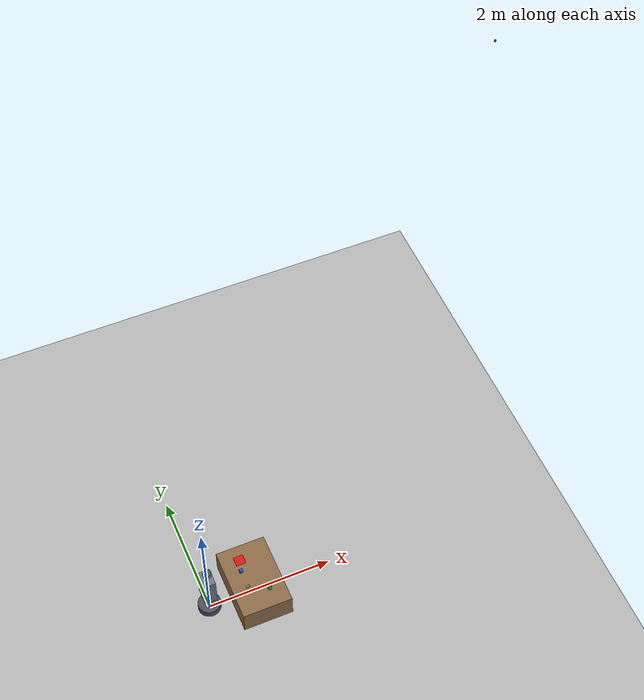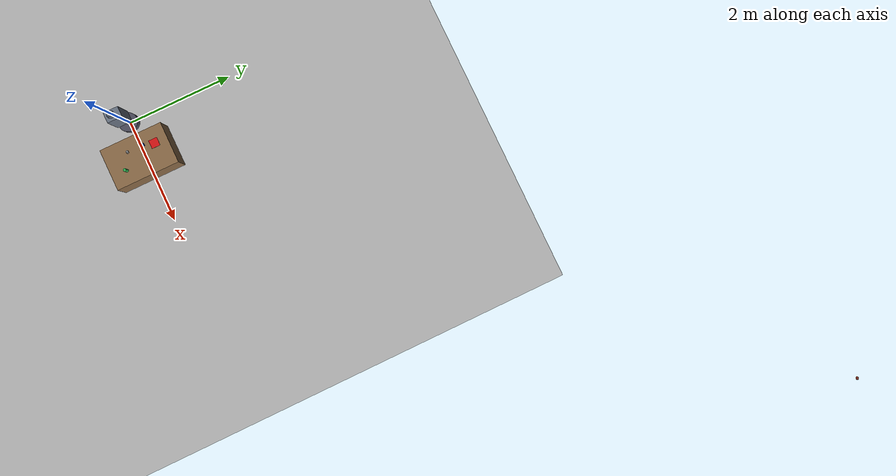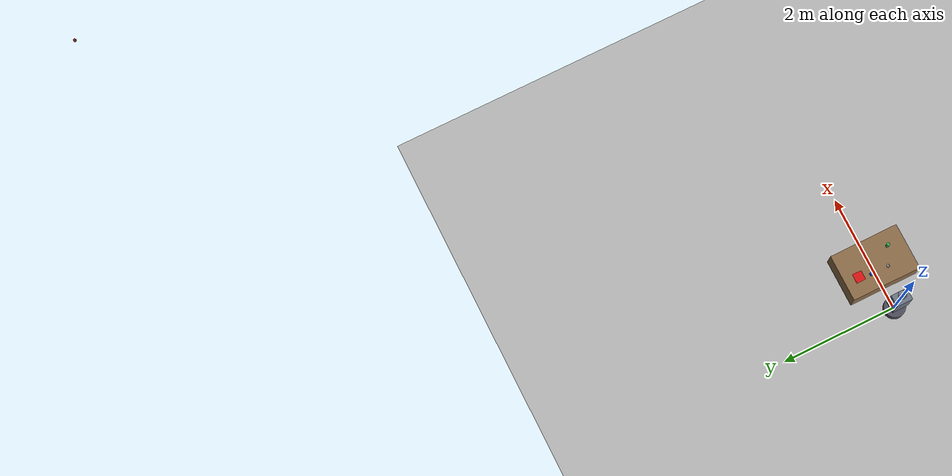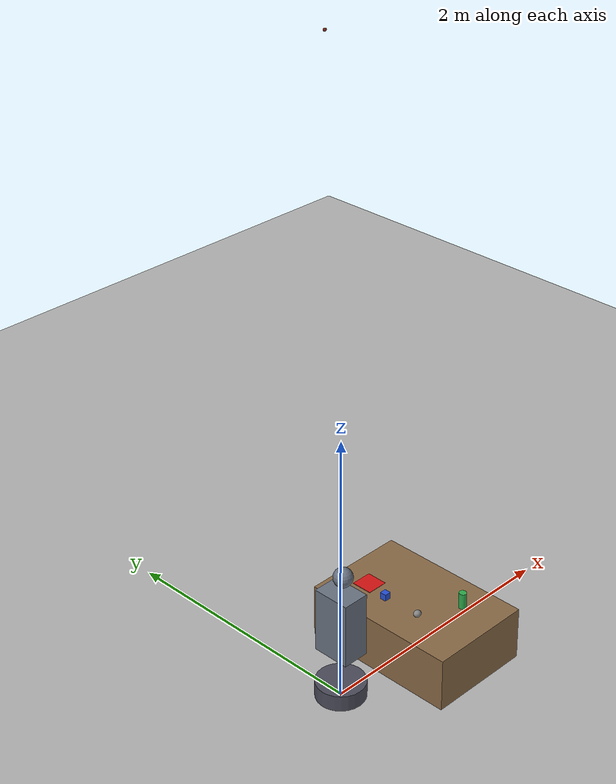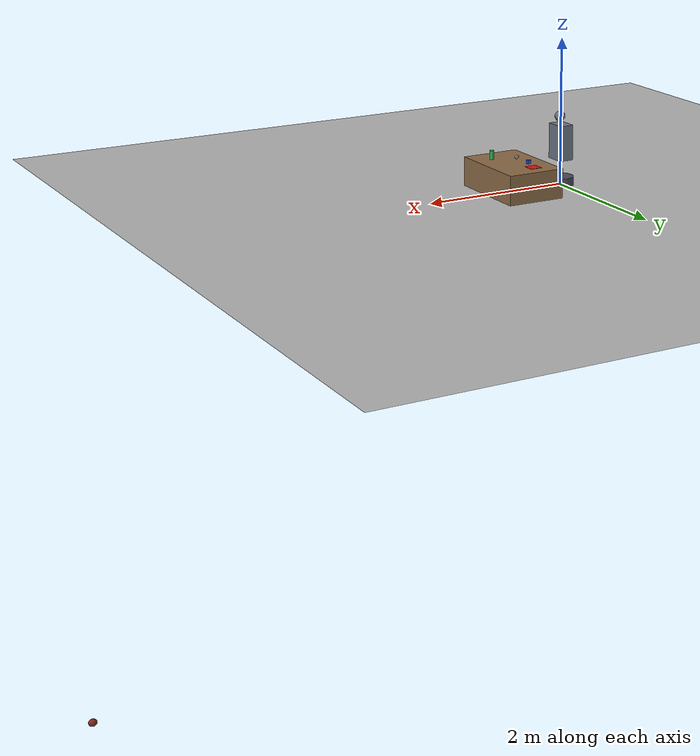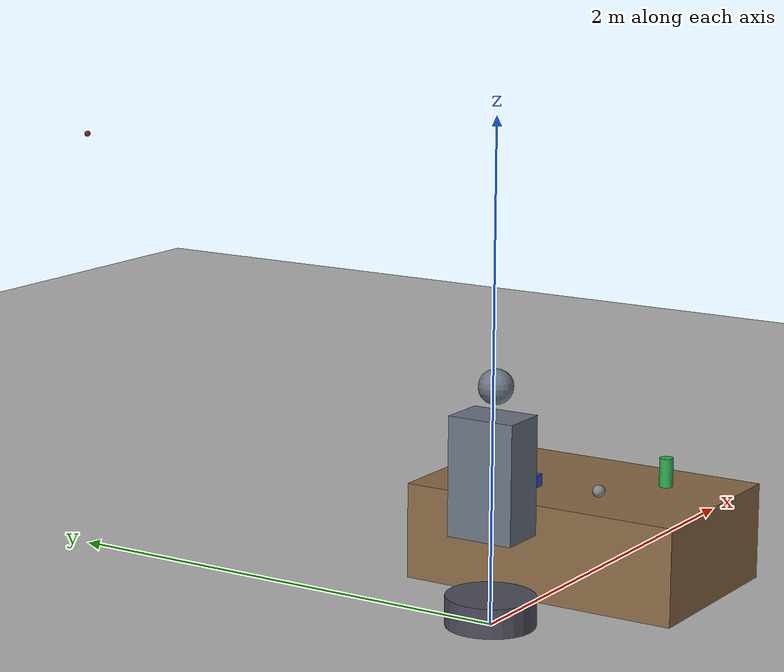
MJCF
<!-- Owner: backbone (ALL) -->
<mujoco model="ee4705_simple_platform">
  <compiler angle="radian"/>
  <option timestep="0.005" integrator="implicitfast"/>
  <statistic extent="2" center="0.5 0 0.5"/>
  <visual>
    <map znear="0.005" zfar="10"/>
    <global offwidth="640" offheight="480"/>
    <quality shadowsize="2048"/>
  </visual>
  <asset>
    <texture type="skybox" builtin="gradient" rgb1="0.7 0.8 0.9" rgb2="0.35 0.45 0.55" width="64" height="64"/>
    <texture name="grid" type="2d" builtin="checker" rgb1="0.8 0.8 0.8" rgb2="0.62 0.62 0.62" width="64" height="64"/>
    <material name="grid" texture="grid" texrepeat="10 10" reflectance="0.05"/>
  </asset>

  <worldbody>
    <light pos="0.5 0 3" dir="0 0 -1" diffuse="0.9 0.9 0.9"/>
    <light pos="2 1.5 2.5" dir="-0.5 -0.4 -0.8" diffuse="0.45 0.45 0.45"/>
    <geom name="floor" type="plane" size="6 6 0.1" material="grid"/>

    <!-- Debug overhead camera (optional for perception; not the onboard view) -->
    <camera name="overhead" pos="0.6 0 2.4" xyaxes="0 -1 0 1 0 0" fovy="55"/>

    <!-- Table: top surface at z = 0.40 m -->
    <body name="table" pos="0.75 0 0.2">
      <geom name="table_top" type="box" size="0.4 0.6 0.2" rgba="0.55 0.42 0.28 1" friction="0.8 0.005 0.0001"/>
    </body>

    <!-- Finite red target region: visual-only thin box ON the table top.
         Bounds: center (0.65, 0.35), half-extent 0.08 x 0.08 in x/y.
         Support height (table top): 0.40 m. -->
    <body name="red_region" pos="0.65 0.35 0.4015">
      <geom name="red_region_geom" type="box" size="0.08 0.08 0.0015" rgba="0.85 0.08 0.08 1"
            contype="0" conaffinity="0"/>
    </body>

    <!-- Robot -->
    <body name="base" pos="0 0 0">
      <joint name="base_x" type="slide" axis="1 0 0" range="-2.5 2.5" damping="80"/>
      <joint name="base_y" type="slide" axis="0 1 0" range="-2.5 2.5" damping="80"/>
      <joint name="base_yaw" type="hinge" axis="0 0 1" range="-3.2 3.2" damping="30"/>
      <geom name="base_geom" type="cylinder" size="0.18 0.06" pos="0 0 0.06" rgba="0.30 0.30 0.36 1"/>
      <geom name="torso_geom" type="box" size="0.10 0.14 0.24" pos="0 0 0.60" rgba="0.42 0.46 0.52 1"
            contype="0" conaffinity="0"/>
      <body name="head" pos="0.02 0 0.95">
        <geom name="head_geom" type="sphere" size="0.07" rgba="0.42 0.46 0.52 1" contype="0" conaffinity="0"/>
        <!-- Onboard RGB-D camera: forward (+x of base) and pitched down.
             MuJoCo camera frame: x right, y up, looks along -z. -->
        <camera name="onboard" pos="0.14 0 0.02" xyaxes="0 -1 0  0.6 0 0.8" fovy="60"/>
      </body>
      <!-- Cartesian arm: slides relative to the (yaw-rotated) base -->
      <body name="arm_base" pos="0 0 0.80">
        <geom name="arm_base_geom" type="box" size="0.05 0.05 0.02" rgba="0.5 0.5 0.55 1"
              contype="0" conaffinity="0"/>
        <body name="arm_x_body" pos="0 0 0">
          <joint name="arm_x" type="slide" axis="1 0 0" range="0.10 0.90" damping="40"/>
          <geom name="arm_x_geom" type="capsule" fromto="0 0 0  0 0 -0.03" size="0.02" mass="2.0"
                rgba="0.5 0.5 0.55 1" contype="0" conaffinity="0"/>
          <body name="arm_y_body" pos="0 0 0">
            <joint name="arm_y" type="slide" axis="0 1 0" range="-0.70 0.70" damping="40"/>
            <geom name="arm_y_geom" type="capsule" fromto="0 0 0  0 0 -0.05" size="0.018" mass="1.5"
                  rgba="0.5 0.5 0.55 1" contype="0" conaffinity="0"/>
            <body name="ee_body" pos="0 0 0">
              <joint name="arm_z" type="slide" axis="0 0 1" range="-0.55 0.15" damping="40"/>
              <geom name="ee_geom" type="sphere" size="0.015" mass="0.8" rgba="0.05 0.85 0.10 1"
                    contype="0" conaffinity="0"/>
              <!-- Visible end-effector site -->
              <site name="ee_site" pos="0 0 0" size="0.012" rgba="0 1 0 1"/>
            </body>
          </body>
        </body>
      </body>
    </body>

    <!-- Manipulable free bodies.  Default poses here are placeholders; every
         trial reset re-places them from SceneConfig (unused objects are
         parked far outside the workspace). -->
    <body name="stone" pos="0.60 -0.15 0.425">
      <freejoint name="stone_free"/>
      <geom name="stone_geom" type="ellipsoid" size="0.030 0.025 0.025" rgba="0.52 0.52 0.52 1"
            density="1800" friction="0.9 0.005 0.01" condim="6"/>
    </body>
    <body name="stone2" pos="10 10 0.025">
      <freejoint name="stone2_free"/>
      <geom name="stone2_geom" type="ellipsoid" size="0.030 0.025 0.025" rgba="0.47 0.15 0.10 1"
            density="1800" friction="0.9 0.005 0.01" condim="6"/>
    </body>
    <body name="cube" pos="0.60 0.15 0.425">
      <freejoint name="cube_free"/>
      <geom name="cube_geom" type="box" size="0.025 0.025 0.025" rgba="0.15 0.32 0.85 1"
            density="600" friction="0.9 0.005 0.0001"/>
    </body>
    <body name="bottle" pos="0.90 -0.30 0.46">
      <freejoint name="bottle_free"/>
      <geom name="bottle_geom" type="cylinder" size="0.028 0.06" rgba="0.18 0.68 0.30 1"
            density="400" friction="0.7 0.005 0.005" condim="6"/>
    </body>
  </worldbody>

  <!-- One predefined (inactive) weld per manipulable body; SimWorld
       activates at most one at a time with the current relative pose, so
       attachment never snaps the object. -->
  <equality>
    <weld name="grasp_stone" body1="ee_body" body2="stone" active="false"/>
    <weld name="grasp_stone2" body1="ee_body" body2="stone2" active="false"/>
    <weld name="grasp_cube" body1="ee_body" body2="cube" active="false"/>
    <weld name="grasp_bottle" body1="ee_body" body2="bottle" active="false"/>
  </equality>

  <actuator>
    <position name="act_base_x" joint="base_x" kp="2000" kv="300" ctrlrange="-2.5 2.5" forcerange="-800 800"/>
    <position name="act_base_y" joint="base_y" kp="2000" kv="300" ctrlrange="-2.5 2.5" forcerange="-800 800"/>
    <position name="act_base_yaw" joint="base_yaw" kp="600" kv="80" ctrlrange="-3.2 3.2" forcerange="-300 300"/>
    <position name="act_arm_x" joint="arm_x" kp="1500" kv="120" ctrlrange="0.10 0.90" forcerange="-200 200"/>
    <position name="act_arm_y" joint="arm_y" kp="1500" kv="120" ctrlrange="-0.70 0.70" forcerange="-200 200"/>
    <position name="act_arm_z" joint="arm_z" kp="1500" kv="120" ctrlrange="-0.55 0.15" forcerange="-200 200"/>
  </actuator>
</mujoco>
